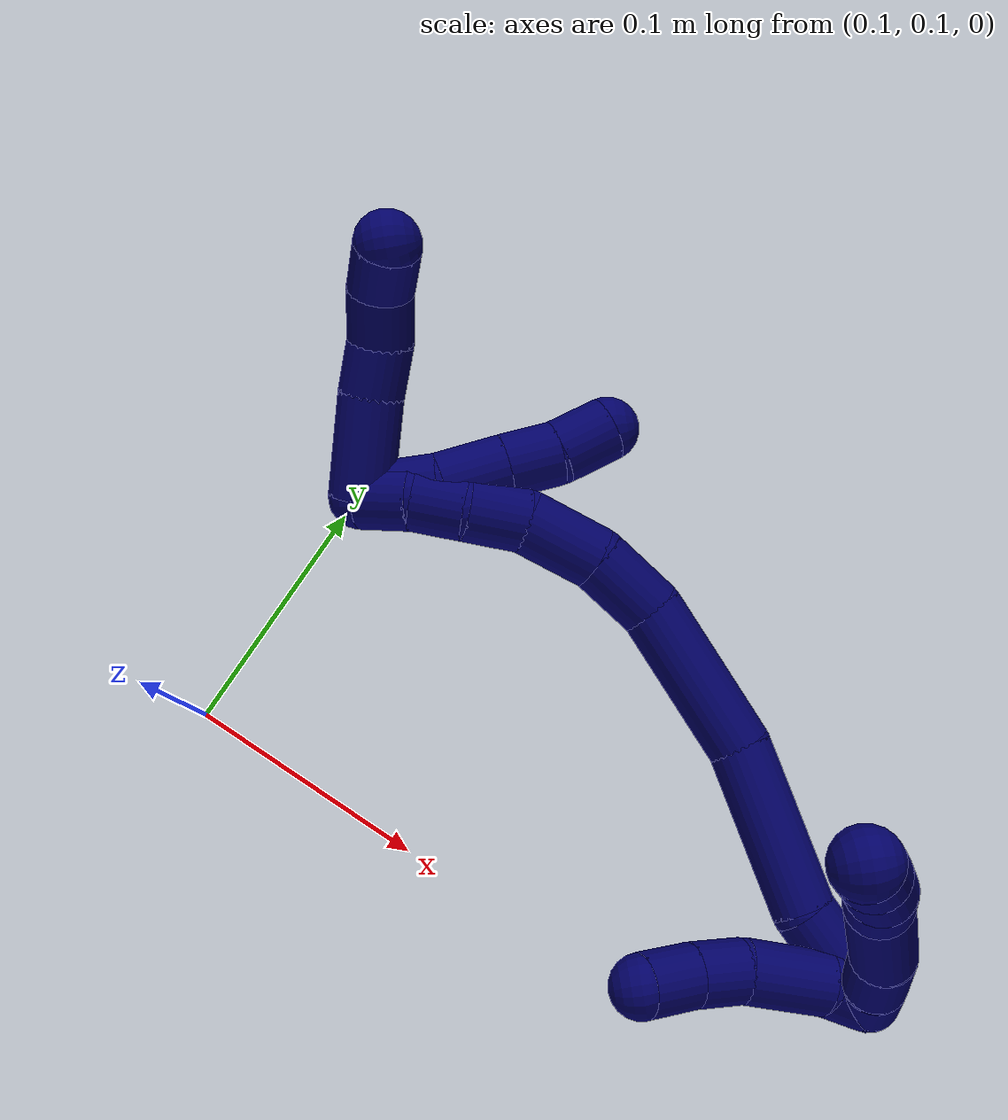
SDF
<sdf version="1.7">
 <world name="default">
  <model name="7">
   <static>0</static>
   <link name="7">
    <collision name="collision-cylinder-e_1_2_8">
     <pose>-0.011282 -0.004541 8.4e-05 1.55231 -1.18809 -1.17099</pose>
     <geometry><cylinder><radius>0.0125</radius><length>0.024324</length></cylinder></geometry>
     <surface>
      <friction><ode><mu>1.16</mu><mu2>1.16</mu2><slip1>0</slip1><slip2>0</slip2></ode></friction>
      <contact><ode><kp>1e+06</kp><kd>1</kd><max_vel>0</max_vel><min_depth>0.001</min_depth></ode></contact>
     </surface>
    </collision>
    <visual name="visual-cylinder-e_1_2_8">
     <pose>-0.011282 -0.004541 8.4e-05 1.55231 -1.18809 -1.17099</pose>
     <geometry><cylinder><radius>0.0125</radius><length>0.024324</length></cylinder></geometry>
     <material><ambient>0.003922 0 0.403922 1</ambient></material>
    </visual>
    <collision name="collision-cylinder-e_2_8_9">
     <pose>-0.035018 -0.012757 0.000713 1.42349 -1.28091 -1.14264</pose>
     <geometry><cylinder><radius>0.0125</radius><length>0.025992</length></cylinder></geometry>
     <surface>
      <friction><ode><mu>1.16</mu><mu2>1.16</mu2><slip1>0</slip1><slip2>0</slip2></ode></friction>
      <contact><ode><kp>1e+06</kp><kd>1</kd><max_vel>0</max_vel><min_depth>0.001</min_depth></ode></contact>
     </surface>
    </collision>
    <visual name="visual-cylinder-e_2_8_9">
     <pose>-0.035018 -0.012757 0.000713 1.42349 -1.28091 -1.14264</pose>
     <geometry><cylinder><radius>0.0125</radius><length>0.025992</length></cylinder></geometry>
     <material><ambient>0.003922 0 0.403922 1</ambient></material>
    </visual>
    <collision name="collision-cylinder-e_3_9_10">
     <pose>-0.066538 -0.020521 -0.000773 2.03174 -1.33573 -1.80943</pose>
     <geometry><cylinder><radius>0.0125</radius><length>0.03921</length></cylinder></geometry>
     <surface>
      <friction><ode><mu>1.16</mu><mu2>1.16</mu2><slip1>0</slip1><slip2>0</slip2></ode></friction>
      <contact><ode><kp>1e+06</kp><kd>1</kd><max_vel>0</max_vel><min_depth>0.001</min_depth></ode></contact>
     </surface>
    </collision>
    <visual name="visual-cylinder-e_3_9_10">
     <pose>-0.066538 -0.020521 -0.000773 2.03174 -1.33573 -1.80943</pose>
     <geometry><cylinder><radius>0.0125</radius><length>0.03921</length></cylinder></geometry>
     <material><ambient>0.003922 0 0.403922 1</ambient></material>
    </visual>
    <collision name="collision-cylinder-e_4_10_11">
     <pose>-0.094585 -0.029163 -0.00375 1.77571 -1.09308 -1.28417</pose>
     <geometry><cylinder><radius>0.0125</radius><length>0.020227</length></cylinder></geometry>
     <surface>
      <friction><ode><mu>1.16</mu><mu2>1.16</mu2><slip1>0</slip1><slip2>0</slip2></ode></friction>
      <contact><ode><kp>1e+06</kp><kd>1</kd><max_vel>0</max_vel><min_depth>0.001</min_depth></ode></contact>
     </surface>
    </collision>
    <visual name="visual-cylinder-e_4_10_11">
     <pose>-0.094585 -0.029163 -0.00375 1.77571 -1.09308 -1.28417</pose>
     <geometry><cylinder><radius>0.0125</radius><length>0.020227</length></cylinder></geometry>
     <material><ambient>0.003922 0 0.403922 1</ambient></material>
    </visual>
    <collision name="collision-cylinder-e_5_11_12">
     <pose>-0.112438 -0.037896 -0.007055 2.08445 -1.07479 -1.59096</pose>
     <geometry><cylinder><radius>0.0125</radius><length>0.020174</length></cylinder></geometry>
     <surface>
      <friction><ode><mu>1.16</mu><mu2>1.16</mu2><slip1>0</slip1><slip2>0</slip2></ode></friction>
      <contact><ode><kp>1e+06</kp><kd>1</kd><max_vel>0</max_vel><min_depth>0.001</min_depth></ode></contact>
     </surface>
    </collision>
    <visual name="visual-cylinder-e_5_11_12">
     <pose>-0.112438 -0.037896 -0.007055 2.08445 -1.07479 -1.59096</pose>
     <geometry><cylinder><radius>0.0125</radius><length>0.020174</length></cylinder></geometry>
     <material><ambient>0.003922 0 0.403922 1</ambient></material>
    </visual>
    <collision name="collision-cylinder-e_6_12_6">
     <pose>-0.129797 -0.046813 -0.011913 2.05651 -1.00801 -1.48185</pose>
     <geometry><cylinder><radius>0.0125</radius><length>0.020073</length></cylinder></geometry>
     <surface>
      <friction><ode><mu>1.16</mu><mu2>1.16</mu2><slip1>0</slip1><slip2>0</slip2></ode></friction>
      <contact><ode><kp>1e+06</kp><kd>1</kd><max_vel>0</max_vel><min_depth>0.001</min_depth></ode></contact>
     </surface>
    </collision>
    <visual name="visual-cylinder-e_6_12_6">
     <pose>-0.129797 -0.046813 -0.011913 2.05651 -1.00801 -1.48185</pose>
     <geometry><cylinder><radius>0.0125</radius><length>0.020073</length></cylinder></geometry>
     <material><ambient>0.003922 0 0.403922 1</ambient></material>
    </visual>
    <collision name="collision-cylinder-e_1_2_13">
     <pose>-0.007999 -0.000553 -0.008461 3.07627 -0.756258 -2.97746</pose>
     <geometry><cylinder><radius>0.0125</radius><length>0.023312</length></cylinder></geometry>
     <surface>
      <friction><ode><mu>1.16</mu><mu2>1.16</mu2><slip1>0</slip1><slip2>0</slip2></ode></friction>
      <contact><ode><kp>1e+06</kp><kd>1</kd><max_vel>0</max_vel><min_depth>0.001</min_depth></ode></contact>
     </surface>
    </collision>
    <visual name="visual-cylinder-e_1_2_13">
     <pose>-0.007999 -0.000553 -0.008461 3.07627 -0.756258 -2.97746</pose>
     <geometry><cylinder><radius>0.0125</radius><length>0.023312</length></cylinder></geometry>
     <material><ambient>0.003922 0 0.403922 1</ambient></material>
    </visual>
    <collision name="collision-cylinder-e_2_13_14">
     <pose>-0.023569 -0.000785 -0.032467 -3.12087 -0.453187 3.05179</pose>
     <geometry><cylinder><radius>0.0125</radius><length>0.03459</length></cylinder></geometry>
     <surface>
      <friction><ode><mu>1.16</mu><mu2>1.16</mu2><slip1>0</slip1><slip2>0</slip2></ode></friction>
      <contact><ode><kp>1e+06</kp><kd>1</kd><max_vel>0</max_vel><min_depth>0.001</min_depth></ode></contact>
     </surface>
    </collision>
    <visual name="visual-cylinder-e_2_13_14">
     <pose>-0.023569 -0.000785 -0.032467 -3.12087 -0.453187 3.05179</pose>
     <geometry><cylinder><radius>0.0125</radius><length>0.03459</length></cylinder></geometry>
     <material><ambient>0.003922 0 0.403922 1</ambient></material>
    </visual>
    <collision name="collision-cylinder-e_3_14_15">
     <pose>-0.034224 -0.002072 -0.057608 2.97546 -0.306779 -2.15361</pose>
     <geometry><cylinder><radius>0.0125</radius><length>0.02041</length></cylinder></geometry>
     <surface>
      <friction><ode><mu>1.16</mu><mu2>1.16</mu2><slip1>0</slip1><slip2>0</slip2></ode></friction>
      <contact><ode><kp>1e+06</kp><kd>1</kd><max_vel>0</max_vel><min_depth>0.001</min_depth></ode></contact>
     </surface>
    </collision>
    <visual name="visual-cylinder-e_3_14_15">
     <pose>-0.034224 -0.002072 -0.057608 2.97546 -0.306779 -2.15361</pose>
     <geometry><cylinder><radius>0.0125</radius><length>0.02041</length></cylinder></geometry>
     <material><ambient>0.003922 0 0.403922 1</ambient></material>
    </visual>
    <collision name="collision-cylinder-e_4_15_5">
     <pose>-0.040899 -0.00704 -0.076866 2.80696 -0.337763 -1.58027</pose>
     <geometry><cylinder><radius>0.0125</radius><length>0.021688</length></cylinder></geometry>
     <surface>
      <friction><ode><mu>1.16</mu><mu2>1.16</mu2><slip1>0</slip1><slip2>0</slip2></ode></friction>
      <contact><ode><kp>1e+06</kp><kd>1</kd><max_vel>0</max_vel><min_depth>0.001</min_depth></ode></contact>
     </surface>
    </collision>
    <visual name="visual-cylinder-e_4_15_5">
     <pose>-0.040899 -0.00704 -0.076866 2.80696 -0.337763 -1.58027</pose>
     <geometry><cylinder><radius>0.0125</radius><length>0.021688</length></cylinder></geometry>
     <material><ambient>0.003922 0 0.403922 1</ambient></material>
    </visual>
    <collision name="collision-cylinder-e_1_2_16">
     <pose>-0.016374 0.011002 -0.009698 -2.29328 -0.840358 1.56016</pose>
     <geometry><cylinder><radius>0.0125</radius><length>0.043964</length></cylinder></geometry>
     <surface>
      <friction><ode><mu>1.16</mu><mu2>1.16</mu2><slip1>0</slip1><slip2>0</slip2></ode></friction>
      <contact><ode><kp>1e+06</kp><kd>1</kd><max_vel>0</max_vel><min_depth>0.001</min_depth></ode></contact>
     </surface>
    </collision>
    <visual name="visual-cylinder-e_1_2_16">
     <pose>-0.016374 0.011002 -0.009698 -2.29328 -0.840358 1.56016</pose>
     <geometry><cylinder><radius>0.0125</radius><length>0.043964</length></cylinder></geometry>
     <material><ambient>0.003922 0 0.403922 1</ambient></material>
    </visual>
    <collision name="collision-cylinder-e_2_16_17">
     <pose>-0.056755 0.044628 -0.02615 -1.86091 -0.793719 1.02476</pose>
     <geometry><cylinder><radius>0.0125</radius><length>0.067343</length></cylinder></geometry>
     <surface>
      <friction><ode><mu>1.16</mu><mu2>1.16</mu2><slip1>0</slip1><slip2>0</slip2></ode></friction>
      <contact><ode><kp>1e+06</kp><kd>1</kd><max_vel>0</max_vel><min_depth>0.001</min_depth></ode></contact>
     </surface>
    </collision>
    <visual name="visual-cylinder-e_2_16_17">
     <pose>-0.056755 0.044628 -0.02615 -1.86091 -0.793719 1.02476</pose>
     <geometry><cylinder><radius>0.0125</radius><length>0.067343</length></cylinder></geometry>
     <material><ambient>0.003922 0 0.403922 1</ambient></material>
    </visual>
    <collision name="collision-cylinder-e_3_17_18">
     <pose>-0.103993 0.085095 -0.045539 -2.18693 -0.815722 1.39192</pose>
     <geometry><cylinder><radius>0.0125</radius><length>0.063803</length></cylinder></geometry>
     <surface>
      <friction><ode><mu>1.16</mu><mu2>1.16</mu2><slip1>0</slip1><slip2>0</slip2></ode></friction>
      <contact><ode><kp>1e+06</kp><kd>1</kd><max_vel>0</max_vel><min_depth>0.001</min_depth></ode></contact>
     </surface>
    </collision>
    <visual name="visual-cylinder-e_3_17_18">
     <pose>-0.103993 0.085095 -0.045539 -2.18693 -0.815722 1.39192</pose>
     <geometry><cylinder><radius>0.0125</radius><length>0.063803</length></cylinder></geometry>
     <material><ambient>0.003922 0 0.403922 1</ambient></material>
    </visual>
    <collision name="collision-cylinder-e_4_18_19">
     <pose>-0.137723 0.107891 -0.06706 -2.63316 -0.801125 2.04085</pose>
     <geometry><cylinder><radius>0.0125</radius><length>0.029239</length></cylinder></geometry>
     <surface>
      <friction><ode><mu>1.16</mu><mu2>1.16</mu2><slip1>0</slip1><slip2>0</slip2></ode></friction>
      <contact><ode><kp>1e+06</kp><kd>1</kd><max_vel>0</max_vel><min_depth>0.001</min_depth></ode></contact>
     </surface>
    </collision>
    <visual name="visual-cylinder-e_4_18_19">
     <pose>-0.137723 0.107891 -0.06706 -2.63316 -0.801125 2.04085</pose>
     <geometry><cylinder><radius>0.0125</radius><length>0.029239</length></cylinder></geometry>
     <material><ambient>0.003922 0 0.403922 1</ambient></material>
    </visual>
    <collision name="collision-cylinder-e_5_19_20">
     <pose>-0.15682 0.116887 -0.088291 -2.82504 -0.584692 2.16636</pose>
     <geometry><cylinder><radius>0.0125</radius><length>0.031152</length></cylinder></geometry>
     <surface>
      <friction><ode><mu>1.16</mu><mu2>1.16</mu2><slip1>0</slip1><slip2>0</slip2></ode></friction>
      <contact><ode><kp>1e+06</kp><kd>1</kd><max_vel>0</max_vel><min_depth>0.001</min_depth></ode></contact>
     </surface>
    </collision>
    <visual name="visual-cylinder-e_5_19_20">
     <pose>-0.15682 0.116887 -0.088291 -2.82504 -0.584692 2.16636</pose>
     <geometry><cylinder><radius>0.0125</radius><length>0.031152</length></cylinder></geometry>
     <material><ambient>0.003922 0 0.403922 1</ambient></material>
    </visual>
    <collision name="collision-cylinder-e_6_20_21">
     <pose>-0.170111 0.121382 -0.111503 -3.10011 -0.40737 2.9414</pose>
     <geometry><cylinder><radius>0.0125</radius><length>0.023695</length></cylinder></geometry>
     <surface>
      <friction><ode><mu>1.16</mu><mu2>1.16</mu2><slip1>0</slip1><slip2>0</slip2></ode></friction>
      <contact><ode><kp>1e+06</kp><kd>1</kd><max_vel>0</max_vel><min_depth>0.001</min_depth></ode></contact>
     </surface>
    </collision>
    <visual name="visual-cylinder-e_6_20_21">
     <pose>-0.170111 0.121382 -0.111503 -3.10011 -0.40737 2.9414</pose>
     <geometry><cylinder><radius>0.0125</radius><length>0.023695</length></cylinder></geometry>
     <material><ambient>0.003922 0 0.403922 1</ambient></material>
    </visual>
    <collision name="collision-cylinder-e_7_21_22">
     <pose>-0.177667 0.123967 -0.131887 -2.921 -0.28549 1.82852</pose>
     <geometry><cylinder><radius>0.0125</radius><length>0.020326</length></cylinder></geometry>
     <surface>
      <friction><ode><mu>1.16</mu><mu2>1.16</mu2><slip1>0</slip1><slip2>0</slip2></ode></friction>
      <contact><ode><kp>1e+06</kp><kd>1</kd><max_vel>0</max_vel><min_depth>0.001</min_depth></ode></contact>
     </surface>
    </collision>
    <visual name="visual-cylinder-e_7_21_22">
     <pose>-0.177667 0.123967 -0.131887 -2.921 -0.28549 1.82852</pose>
     <geometry><cylinder><radius>0.0125</radius><length>0.020326</length></cylinder></geometry>
     <material><ambient>0.003922 0 0.403922 1</ambient></material>
    </visual>
    <collision name="collision-cylinder-e_8_22_1">
     <pose>-0.180989 0.129023 -0.151203 -2.85185 -0.04496 0.305818</pose>
     <geometry><cylinder><radius>0.0125</radius><length>0.020477</length></cylinder></geometry>
     <surface>
      <friction><ode><mu>1.16</mu><mu2>1.16</mu2><slip1>0</slip1><slip2>0</slip2></ode></friction>
      <contact><ode><kp>1e+06</kp><kd>1</kd><max_vel>0</max_vel><min_depth>0.001</min_depth></ode></contact>
     </surface>
    </collision>
    <visual name="visual-cylinder-e_8_22_1">
     <pose>-0.180989 0.129023 -0.151203 -2.85185 -0.04496 0.305818</pose>
     <geometry><cylinder><radius>0.0125</radius><length>0.020477</length></cylinder></geometry>
     <material><ambient>0.003922 0 0.403922 1</ambient></material>
    </visual>
    <collision name="collision-cylinder-e_1_1_23">
     <pose>-0.181532 0.13119 -0.145778 0.049501 -0.005451 -0.000135</pose>
     <geometry><cylinder><radius>0.0125</radius><length>0.030492</length></cylinder></geometry>
     <surface>
      <friction><ode><mu>1.16</mu><mu2>1.16</mu2><slip1>0</slip1><slip2>0</slip2></ode></friction>
      <contact><ode><kp>1e+06</kp><kd>1</kd><max_vel>0</max_vel><min_depth>0.001</min_depth></ode></contact>
     </surface>
    </collision>
    <visual name="visual-cylinder-e_1_1_23">
     <pose>-0.181532 0.13119 -0.145778 0.049501 -0.005451 -0.000135</pose>
     <geometry><cylinder><radius>0.0125</radius><length>0.030492</length></cylinder></geometry>
     <material><ambient>0.003922 0 0.403922 1</ambient></material>
    </visual>
    <collision name="collision-cylinder-e_2_23_24">
     <pose>-0.18156 0.133348 -0.117745 -0.2236 0.004228 -0.000475</pose>
     <geometry><cylinder><radius>0.0125</radius><length>0.026266</length></cylinder></geometry>
     <surface>
      <friction><ode><mu>1.16</mu><mu2>1.16</mu2><slip1>0</slip1><slip2>0</slip2></ode></friction>
      <contact><ode><kp>1e+06</kp><kd>1</kd><max_vel>0</max_vel><min_depth>0.001</min_depth></ode></contact>
     </surface>
    </collision>
    <visual name="visual-cylinder-e_2_23_24">
     <pose>-0.18156 0.133348 -0.117745 -0.2236 0.004228 -0.000475</pose>
     <geometry><cylinder><radius>0.0125</radius><length>0.026266</length></cylinder></geometry>
     <material><ambient>0.003922 0 0.403922 1</ambient></material>
    </visual>
    <collision name="collision-cylinder-e_3_24_25">
     <pose>-0.181295 0.138235 -0.094593 -0.188582 0.019875 -0.00188</pose>
     <geometry><cylinder><radius>0.0125</radius><length>0.021069</length></cylinder></geometry>
     <surface>
      <friction><ode><mu>1.16</mu><mu2>1.16</mu2><slip1>0</slip1><slip2>0</slip2></ode></friction>
      <contact><ode><kp>1e+06</kp><kd>1</kd><max_vel>0</max_vel><min_depth>0.001</min_depth></ode></contact>
     </surface>
    </collision>
    <visual name="visual-cylinder-e_3_24_25">
     <pose>-0.181295 0.138235 -0.094593 -0.188582 0.019875 -0.00188</pose>
     <geometry><cylinder><radius>0.0125</radius><length>0.021069</length></cylinder></geometry>
     <material><ambient>0.003922 0 0.403922 1</ambient></material>
    </visual>
    <collision name="collision-cylinder-e_4_25_4">
     <pose>-0.182303 0.143972 -0.07389 -0.34845 -0.11006 0.019391</pose>
     <geometry><cylinder><radius>0.0125</radius><length>0.022173</length></cylinder></geometry>
     <surface>
      <friction><ode><mu>1.16</mu><mu2>1.16</mu2><slip1>0</slip1><slip2>0</slip2></ode></friction>
      <contact><ode><kp>1e+06</kp><kd>1</kd><max_vel>0</max_vel><min_depth>0.001</min_depth></ode></contact>
     </surface>
    </collision>
    <visual name="visual-cylinder-e_4_25_4">
     <pose>-0.182303 0.143972 -0.07389 -0.34845 -0.11006 0.019391</pose>
     <geometry><cylinder><radius>0.0125</radius><length>0.022173</length></cylinder></geometry>
     <material><ambient>0.003922 0 0.403922 1</ambient></material>
    </visual>
    <collision name="collision-cylinder-e_1_1_26">
     <pose>-0.198851 0.139026 -0.155341 -0.896177 -1.09042 0.567396</pose>
     <geometry><cylinder><radius>0.0125</radius><length>0.039246</length></cylinder></geometry>
     <surface>
      <friction><ode><mu>1.16</mu><mu2>1.16</mu2><slip1>0</slip1><slip2>0</slip2></ode></friction>
      <contact><ode><kp>1e+06</kp><kd>1</kd><max_vel>0</max_vel><min_depth>0.001</min_depth></ode></contact>
     </surface>
    </collision>
    <visual name="visual-cylinder-e_1_1_26">
     <pose>-0.198851 0.139026 -0.155341 -0.896177 -1.09042 0.567396</pose>
     <geometry><cylinder><radius>0.0125</radius><length>0.039246</length></cylinder></geometry>
     <material><ambient>0.003922 0 0.403922 1</ambient></material>
    </visual>
    <collision name="collision-cylinder-e_2_26_27">
     <pose>-0.22535 0.14869 -0.145998 -0.611831 -1.11184 0.387516</pose>
     <geometry><cylinder><radius>0.0125</radius><length>0.020292</length></cylinder></geometry>
     <surface>
      <friction><ode><mu>1.16</mu><mu2>1.16</mu2><slip1>0</slip1><slip2>0</slip2></ode></friction>
      <contact><ode><kp>1e+06</kp><kd>1</kd><max_vel>0</max_vel><min_depth>0.001</min_depth></ode></contact>
     </surface>
    </collision>
    <visual name="visual-cylinder-e_2_26_27">
     <pose>-0.22535 0.14869 -0.145998 -0.611831 -1.11184 0.387516</pose>
     <geometry><cylinder><radius>0.0125</radius><length>0.020292</length></cylinder></geometry>
     <material><ambient>0.003922 0 0.403922 1</ambient></material>
    </visual>
    <collision name="collision-cylinder-e_3_27_28">
     <pose>-0.24446 0.151776 -0.140288 -0.243604 -1.36478 0.19829</pose>
     <geometry><cylinder><radius>0.0125</radius><length>0.020461</length></cylinder></geometry>
     <surface>
      <friction><ode><mu>1.16</mu><mu2>1.16</mu2><slip1>0</slip1><slip2>0</slip2></ode></friction>
      <contact><ode><kp>1e+06</kp><kd>1</kd><max_vel>0</max_vel><min_depth>0.001</min_depth></ode></contact>
     </surface>
    </collision>
    <visual name="visual-cylinder-e_3_27_28">
     <pose>-0.24446 0.151776 -0.140288 -0.243604 -1.36478 0.19829</pose>
     <geometry><cylinder><radius>0.0125</radius><length>0.020461</length></cylinder></geometry>
     <material><ambient>0.003922 0 0.403922 1</ambient></material>
    </visual>
    <collision name="collision-cylinder-e_4_28_3">
     <pose>-0.263637 0.149725 -0.135171 0.691861 -1.15858 -0.463087</pose>
     <geometry><cylinder><radius>0.0125</radius><length>0.020001</length></cylinder></geometry>
     <surface>
      <friction><ode><mu>1.16</mu><mu2>1.16</mu2><slip1>0</slip1><slip2>0</slip2></ode></friction>
      <contact><ode><kp>1e+06</kp><kd>1</kd><max_vel>0</max_vel><min_depth>0.001</min_depth></ode></contact>
     </surface>
    </collision>
    <visual name="visual-cylinder-e_4_28_3">
     <pose>-0.263637 0.149725 -0.135171 0.691861 -1.15858 -0.463087</pose>
     <geometry><cylinder><radius>0.0125</radius><length>0.020001</length></cylinder></geometry>
     <material><ambient>0.003922 0 0.403922 1</ambient></material>
    </visual>
    <collision name="collision-sphere-3">
     <pose>-0.2728 0.147168 -0.132086 0 -0 0</pose>
     <geometry><sphere><radius>0.0125</radius></sphere></geometry>
     <surface>
      <friction><ode><mu>1.16</mu><mu2>1.16</mu2><slip1>0</slip1><slip2>0</slip2></ode></friction>
      <contact><ode><kp>1e+06</kp><kd>1</kd><max_vel>0</max_vel><min_depth>0.001</min_depth></ode></contact>
     </surface>
    </collision>
    <visual name="visual-sphere-3">
     <pose>-0.2728 0.147168 -0.132086 0 -0 0</pose>
     <geometry><sphere><radius>0.0125</radius></sphere></geometry>
     <material><ambient>0.003922 0 0.403922 1</ambient></material>
    </visual>
    <collision name="collision-sphere-28">
     <pose>-0.254474 0.152281 -0.138257 0 -0 0</pose>
     <geometry><sphere><radius>0.0125</radius></sphere></geometry>
     <surface>
      <friction><ode><mu>1.16</mu><mu2>1.16</mu2><slip1>0</slip1><slip2>0</slip2></ode></friction>
      <contact><ode><kp>1e+06</kp><kd>1</kd><max_vel>0</max_vel><min_depth>0.001</min_depth></ode></contact>
     </surface>
    </collision>
    <visual name="visual-sphere-28">
     <pose>-0.254474 0.152281 -0.138257 0 -0 0</pose>
     <geometry><sphere><radius>0.0125</radius></sphere></geometry>
     <material><ambient>0.003922 0 0.403922 1</ambient></material>
    </visual>
    <collision name="collision-sphere-27">
     <pose>-0.234445 0.151271 -0.142319 0 -0 0</pose>
     <geometry><sphere><radius>0.0125</radius></sphere></geometry>
     <surface>
      <friction><ode><mu>1.16</mu><mu2>1.16</mu2><slip1>0</slip1><slip2>0</slip2></ode></friction>
      <contact><ode><kp>1e+06</kp><kd>1</kd><max_vel>0</max_vel><min_depth>0.001</min_depth></ode></contact>
     </surface>
    </collision>
    <visual name="visual-sphere-27">
     <pose>-0.234445 0.151271 -0.142319 0 -0 0</pose>
     <geometry><sphere><radius>0.0125</radius></sphere></geometry>
     <material><ambient>0.003922 0 0.403922 1</ambient></material>
    </visual>
    <collision name="collision-sphere-26">
     <pose>-0.216254 0.146108 -0.149677 0 -0 0</pose>
     <geometry><sphere><radius>0.0125</radius></sphere></geometry>
     <surface>
      <friction><ode><mu>1.16</mu><mu2>1.16</mu2><slip1>0</slip1><slip2>0</slip2></ode></friction>
      <contact><ode><kp>1e+06</kp><kd>1</kd><max_vel>0</max_vel><min_depth>0.001</min_depth></ode></contact>
     </surface>
    </collision>
    <visual name="visual-sphere-26">
     <pose>-0.216254 0.146108 -0.149677 0 -0 0</pose>
     <geometry><sphere><radius>0.0125</radius></sphere></geometry>
     <material><ambient>0.003922 0 0.403922 1</ambient></material>
    </visual>
    <collision name="collision-sphere-4">
     <pose>-0.183521 0.147734 -0.063533 0 -0 0</pose>
     <geometry><sphere><radius>0.0125</radius></sphere></geometry>
     <surface>
      <friction><ode><mu>1.16</mu><mu2>1.16</mu2><slip1>0</slip1><slip2>0</slip2></ode></friction>
      <contact><ode><kp>1e+06</kp><kd>1</kd><max_vel>0</max_vel><min_depth>0.001</min_depth></ode></contact>
     </surface>
    </collision>
    <visual name="visual-sphere-4">
     <pose>-0.183521 0.147734 -0.063533 0 -0 0</pose>
     <geometry><sphere><radius>0.0125</radius></sphere></geometry>
     <material><ambient>0.003922 0 0.403922 1</ambient></material>
    </visual>
    <collision name="collision-sphere-25">
     <pose>-0.181086 0.140209 -0.084247 0 -0 0</pose>
     <geometry><sphere><radius>0.0125</radius></sphere></geometry>
     <surface>
      <friction><ode><mu>1.16</mu><mu2>1.16</mu2><slip1>0</slip1><slip2>0</slip2></ode></friction>
      <contact><ode><kp>1e+06</kp><kd>1</kd><max_vel>0</max_vel><min_depth>0.001</min_depth></ode></contact>
     </surface>
    </collision>
    <visual name="visual-sphere-25">
     <pose>-0.181086 0.140209 -0.084247 0 -0 0</pose>
     <geometry><sphere><radius>0.0125</radius></sphere></geometry>
     <material><ambient>0.003922 0 0.403922 1</ambient></material>
    </visual>
    <collision name="collision-sphere-24">
     <pose>-0.181504 0.13626 -0.104939 0 -0 0</pose>
     <geometry><sphere><radius>0.0125</radius></sphere></geometry>
     <surface>
      <friction><ode><mu>1.16</mu><mu2>1.16</mu2><slip1>0</slip1><slip2>0</slip2></ode></friction>
      <contact><ode><kp>1e+06</kp><kd>1</kd><max_vel>0</max_vel><min_depth>0.001</min_depth></ode></contact>
     </surface>
    </collision>
    <visual name="visual-sphere-24">
     <pose>-0.181504 0.13626 -0.104939 0 -0 0</pose>
     <geometry><sphere><radius>0.0125</radius></sphere></geometry>
     <material><ambient>0.003922 0 0.403922 1</ambient></material>
    </visual>
    <collision name="collision-sphere-23">
     <pose>-0.181616 0.130436 -0.130551 0 -0 0</pose>
     <geometry><sphere><radius>0.0125</radius></sphere></geometry>
     <surface>
      <friction><ode><mu>1.16</mu><mu2>1.16</mu2><slip1>0</slip1><slip2>0</slip2></ode></friction>
      <contact><ode><kp>1e+06</kp><kd>1</kd><max_vel>0</max_vel><min_depth>0.001</min_depth></ode></contact>
     </surface>
    </collision>
    <visual name="visual-sphere-23">
     <pose>-0.181616 0.130436 -0.130551 0 -0 0</pose>
     <geometry><sphere><radius>0.0125</radius></sphere></geometry>
     <material><ambient>0.003922 0 0.403922 1</ambient></material>
    </visual>
    <collision name="collision-sphere-1">
     <pose>-0.181449 0.131945 -0.161005 0 -0 0</pose>
     <geometry><sphere><radius>0.0125</radius></sphere></geometry>
     <surface>
      <friction><ode><mu>1.16</mu><mu2>1.16</mu2><slip1>0</slip1><slip2>0</slip2></ode></friction>
      <contact><ode><kp>1e+06</kp><kd>1</kd><max_vel>0</max_vel><min_depth>0.001</min_depth></ode></contact>
     </surface>
    </collision>
    <visual name="visual-sphere-1">
     <pose>-0.181449 0.131945 -0.161005 0 -0 0</pose>
     <geometry><sphere><radius>0.0125</radius></sphere></geometry>
     <material><ambient>0.003922 0 0.403922 1</ambient></material>
    </visual>
    <collision name="collision-sphere-22">
     <pose>-0.180529 0.1261 -0.141402 0 -0 0</pose>
     <geometry><sphere><radius>0.0125</radius></sphere></geometry>
     <surface>
      <friction><ode><mu>1.16</mu><mu2>1.16</mu2><slip1>0</slip1><slip2>0</slip2></ode></friction>
      <contact><ode><kp>1e+06</kp><kd>1</kd><max_vel>0</max_vel><min_depth>0.001</min_depth></ode></contact>
     </surface>
    </collision>
    <visual name="visual-sphere-22">
     <pose>-0.180529 0.1261 -0.141402 0 -0 0</pose>
     <geometry><sphere><radius>0.0125</radius></sphere></geometry>
     <material><ambient>0.003922 0 0.403922 1</ambient></material>
    </visual>
    <collision name="collision-sphere-21">
     <pose>-0.174805 0.121833 -0.122371 0 -0 0</pose>
     <geometry><sphere><radius>0.0125</radius></sphere></geometry>
     <surface>
      <friction><ode><mu>1.16</mu><mu2>1.16</mu2><slip1>0</slip1><slip2>0</slip2></ode></friction>
      <contact><ode><kp>1e+06</kp><kd>1</kd><max_vel>0</max_vel><min_depth>0.001</min_depth></ode></contact>
     </surface>
    </collision>
    <visual name="visual-sphere-21">
     <pose>-0.174805 0.121833 -0.122371 0 -0 0</pose>
     <geometry><sphere><radius>0.0125</radius></sphere></geometry>
     <material><ambient>0.003922 0 0.403922 1</ambient></material>
    </visual>
    <collision name="collision-sphere-12">
     <pose>-0.121309 -0.042077 -0.009413 0 -0 0</pose>
     <geometry><sphere><radius>0.0125</radius></sphere></geometry>
     <surface>
      <friction><ode><mu>1.16</mu><mu2>1.16</mu2><slip1>0</slip1><slip2>0</slip2></ode></friction>
      <contact><ode><kp>1e+06</kp><kd>1</kd><max_vel>0</max_vel><min_depth>0.001</min_depth></ode></contact>
     </surface>
    </collision>
    <visual name="visual-sphere-12">
     <pose>-0.121309 -0.042077 -0.009413 0 -0 0</pose>
     <geometry><sphere><radius>0.0125</radius></sphere></geometry>
     <material><ambient>0.003922 0 0.403922 1</ambient></material>
    </visual>
    <collision name="collision-sphere-11">
     <pose>-0.103566 -0.033715 -0.004696 0 -0 0</pose>
     <geometry><sphere><radius>0.0125</radius></sphere></geometry>
     <surface>
      <friction><ode><mu>1.16</mu><mu2>1.16</mu2><slip1>0</slip1><slip2>0</slip2></ode></friction>
      <contact><ode><kp>1e+06</kp><kd>1</kd><max_vel>0</max_vel><min_depth>0.001</min_depth></ode></contact>
     </surface>
    </collision>
    <visual name="visual-sphere-11">
     <pose>-0.103566 -0.033715 -0.004696 0 -0 0</pose>
     <geometry><sphere><radius>0.0125</radius></sphere></geometry>
     <material><ambient>0.003922 0 0.403922 1</ambient></material>
    </visual>
    <collision name="collision-sphere-10">
     <pose>-0.085604 -0.02461 -0.002804 0 -0 0</pose>
     <geometry><sphere><radius>0.0125</radius></sphere></geometry>
     <surface>
      <friction><ode><mu>1.16</mu><mu2>1.16</mu2><slip1>0</slip1><slip2>0</slip2></ode></friction>
      <contact><ode><kp>1e+06</kp><kd>1</kd><max_vel>0</max_vel><min_depth>0.001</min_depth></ode></contact>
     </surface>
    </collision>
    <visual name="visual-sphere-10">
     <pose>-0.085604 -0.02461 -0.002804 0 -0 0</pose>
     <geometry><sphere><radius>0.0125</radius></sphere></geometry>
     <material><ambient>0.003922 0 0.403922 1</ambient></material>
    </visual>
    <collision name="collision-sphere-9">
     <pose>-0.047472 -0.016431 0.001258 0 -0 0</pose>
     <geometry><sphere><radius>0.0125</radius></sphere></geometry>
     <surface>
      <friction><ode><mu>1.16</mu><mu2>1.16</mu2><slip1>0</slip1><slip2>0</slip2></ode></friction>
      <contact><ode><kp>1e+06</kp><kd>1</kd><max_vel>0</max_vel><min_depth>0.001</min_depth></ode></contact>
     </surface>
    </collision>
    <visual name="visual-sphere-9">
     <pose>-0.047472 -0.016431 0.001258 0 -0 0</pose>
     <geometry><sphere><radius>0.0125</radius></sphere></geometry>
     <material><ambient>0.003922 0 0.403922 1</ambient></material>
    </visual>
    <collision name="collision-sphere-2">
     <geometry><sphere><radius>0.0125</radius></sphere></geometry>
     <surface>
      <friction><ode><mu>1.16</mu><mu2>1.16</mu2><slip1>0</slip1><slip2>0</slip2></ode></friction>
      <contact><ode><kp>1e+06</kp><kd>1</kd><max_vel>0</max_vel><min_depth>0.001</min_depth></ode></contact>
     </surface>
    </collision>
    <visual name="visual-sphere-2">
     <geometry><sphere><radius>0.0125</radius></sphere></geometry>
     <material><ambient>0.003922 0 0.403922 1</ambient></material>
    </visual>
    <collision name="collision-sphere-19">
     <pose>-0.148223 0.112844 -0.075947 0 -0 0</pose>
     <geometry><sphere><radius>0.0125</radius></sphere></geometry>
     <surface>
      <friction><ode><mu>1.16</mu><mu2>1.16</mu2><slip1>0</slip1><slip2>0</slip2></ode></friction>
      <contact><ode><kp>1e+06</kp><kd>1</kd><max_vel>0</max_vel><min_depth>0.001</min_depth></ode></contact>
     </surface>
    </collision>
    <visual name="visual-sphere-19">
     <pose>-0.148223 0.112844 -0.075947 0 -0 0</pose>
     <geometry><sphere><radius>0.0125</radius></sphere></geometry>
     <material><ambient>0.003922 0 0.403922 1</ambient></material>
    </visual>
    <collision name="collision-sphere-8">
     <pose>-0.022565 -0.009082 0.000168 0 -0 0</pose>
     <geometry><sphere><radius>0.0125</radius></sphere></geometry>
     <surface>
      <friction><ode><mu>1.16</mu><mu2>1.16</mu2><slip1>0</slip1><slip2>0</slip2></ode></friction>
      <contact><ode><kp>1e+06</kp><kd>1</kd><max_vel>0</max_vel><min_depth>0.001</min_depth></ode></contact>
     </surface>
    </collision>
    <visual name="visual-sphere-8">
     <pose>-0.022565 -0.009082 0.000168 0 -0 0</pose>
     <geometry><sphere><radius>0.0125</radius></sphere></geometry>
     <material><ambient>0.003922 0 0.403922 1</ambient></material>
    </visual>
    <collision name="collision-sphere-6">
     <pose>-0.138286 -0.051548 -0.014413 0 -0 0</pose>
     <geometry><sphere><radius>0.0125</radius></sphere></geometry>
     <surface>
      <friction><ode><mu>1.16</mu><mu2>1.16</mu2><slip1>0</slip1><slip2>0</slip2></ode></friction>
      <contact><ode><kp>1e+06</kp><kd>1</kd><max_vel>0</max_vel><min_depth>0.001</min_depth></ode></contact>
     </surface>
    </collision>
    <visual name="visual-sphere-6">
     <pose>-0.138286 -0.051548 -0.014413 0 -0 0</pose>
     <geometry><sphere><radius>0.0125</radius></sphere></geometry>
     <material><ambient>0.003922 0 0.403922 1</ambient></material>
    </visual>
    <collision name="collision-sphere-13">
     <pose>-0.015997 -0.001107 -0.016921 0 -0 0</pose>
     <geometry><sphere><radius>0.0125</radius></sphere></geometry>
     <surface>
      <friction><ode><mu>1.16</mu><mu2>1.16</mu2><slip1>0</slip1><slip2>0</slip2></ode></friction>
      <contact><ode><kp>1e+06</kp><kd>1</kd><max_vel>0</max_vel><min_depth>0.001</min_depth></ode></contact>
     </surface>
    </collision>
    <visual name="visual-sphere-13">
     <pose>-0.015997 -0.001107 -0.016921 0 -0 0</pose>
     <geometry><sphere><radius>0.0125</radius></sphere></geometry>
     <material><ambient>0.003922 0 0.403922 1</ambient></material>
    </visual>
    <collision name="collision-sphere-14">
     <pose>-0.031142 -0.000463 -0.048013 0 -0 0</pose>
     <geometry><sphere><radius>0.0125</radius></sphere></geometry>
     <surface>
      <friction><ode><mu>1.16</mu><mu2>1.16</mu2><slip1>0</slip1><slip2>0</slip2></ode></friction>
      <contact><ode><kp>1e+06</kp><kd>1</kd><max_vel>0</max_vel><min_depth>0.001</min_depth></ode></contact>
     </surface>
    </collision>
    <visual name="visual-sphere-14">
     <pose>-0.031142 -0.000463 -0.048013 0 -0 0</pose>
     <geometry><sphere><radius>0.0125</radius></sphere></geometry>
     <material><ambient>0.003922 0 0.403922 1</ambient></material>
    </visual>
    <collision name="collision-sphere-15">
     <pose>-0.037305 -0.00368 -0.067202 0 -0 0</pose>
     <geometry><sphere><radius>0.0125</radius></sphere></geometry>
     <surface>
      <friction><ode><mu>1.16</mu><mu2>1.16</mu2><slip1>0</slip1><slip2>0</slip2></ode></friction>
      <contact><ode><kp>1e+06</kp><kd>1</kd><max_vel>0</max_vel><min_depth>0.001</min_depth></ode></contact>
     </surface>
    </collision>
    <visual name="visual-sphere-15">
     <pose>-0.037305 -0.00368 -0.067202 0 -0 0</pose>
     <geometry><sphere><radius>0.0125</radius></sphere></geometry>
     <material><ambient>0.003922 0 0.403922 1</ambient></material>
    </visual>
    <collision name="collision-sphere-5">
     <pose>-0.044492 -0.010401 -0.08653 0 -0 0</pose>
     <geometry><sphere><radius>0.0125</radius></sphere></geometry>
     <surface>
      <friction><ode><mu>1.16</mu><mu2>1.16</mu2><slip1>0</slip1><slip2>0</slip2></ode></friction>
      <contact><ode><kp>1e+06</kp><kd>1</kd><max_vel>0</max_vel><min_depth>0.001</min_depth></ode></contact>
     </surface>
    </collision>
    <visual name="visual-sphere-5">
     <pose>-0.044492 -0.010401 -0.08653 0 -0 0</pose>
     <geometry><sphere><radius>0.0125</radius></sphere></geometry>
     <material><ambient>0.003922 0 0.403922 1</ambient></material>
    </visual>
    <collision name="collision-sphere-16">
     <pose>-0.032748 0.022004 -0.019396 0 -0 0</pose>
     <geometry><sphere><radius>0.0125</radius></sphere></geometry>
     <surface>
      <friction><ode><mu>1.16</mu><mu2>1.16</mu2><slip1>0</slip1><slip2>0</slip2></ode></friction>
      <contact><ode><kp>1e+06</kp><kd>1</kd><max_vel>0</max_vel><min_depth>0.001</min_depth></ode></contact>
     </surface>
    </collision>
    <visual name="visual-sphere-16">
     <pose>-0.032748 0.022004 -0.019396 0 -0 0</pose>
     <geometry><sphere><radius>0.0125</radius></sphere></geometry>
     <material><ambient>0.003922 0 0.403922 1</ambient></material>
    </visual>
    <collision name="collision-sphere-17">
     <pose>-0.080762 0.067252 -0.032904 0 -0 0</pose>
     <geometry><sphere><radius>0.0125</radius></sphere></geometry>
     <surface>
      <friction><ode><mu>1.16</mu><mu2>1.16</mu2><slip1>0</slip1><slip2>0</slip2></ode></friction>
      <contact><ode><kp>1e+06</kp><kd>1</kd><max_vel>0</max_vel><min_depth>0.001</min_depth></ode></contact>
     </surface>
    </collision>
    <visual name="visual-sphere-17">
     <pose>-0.080762 0.067252 -0.032904 0 -0 0</pose>
     <geometry><sphere><radius>0.0125</radius></sphere></geometry>
     <material><ambient>0.003922 0 0.403922 1</ambient></material>
    </visual>
    <collision name="collision-sphere-18">
     <pose>-0.127224 0.102939 -0.058174 0 -0 0</pose>
     <geometry><sphere><radius>0.0125</radius></sphere></geometry>
     <surface>
      <friction><ode><mu>1.16</mu><mu2>1.16</mu2><slip1>0</slip1><slip2>0</slip2></ode></friction>
      <contact><ode><kp>1e+06</kp><kd>1</kd><max_vel>0</max_vel><min_depth>0.001</min_depth></ode></contact>
     </surface>
    </collision>
    <visual name="visual-sphere-18">
     <pose>-0.127224 0.102939 -0.058174 0 -0 0</pose>
     <geometry><sphere><radius>0.0125</radius></sphere></geometry>
     <material><ambient>0.003922 0 0.403922 1</ambient></material>
    </visual>
    <collision name="collision-sphere-20">
     <pose>-0.165417 0.120931 -0.100634 0 -0 0</pose>
     <geometry><sphere><radius>0.0125</radius></sphere></geometry>
     <surface>
      <friction><ode><mu>1.16</mu><mu2>1.16</mu2><slip1>0</slip1><slip2>0</slip2></ode></friction>
      <contact><ode><kp>1e+06</kp><kd>1</kd><max_vel>0</max_vel><min_depth>0.001</min_depth></ode></contact>
     </surface>
    </collision>
    <visual name="visual-sphere-20">
     <pose>-0.165417 0.120931 -0.100634 0 -0 0</pose>
     <geometry><sphere><radius>0.0125</radius></sphere></geometry>
     <material><ambient>0.003922 0 0.403922 1</ambient></material>
    </visual>
    <inertial>
     <pose>-0.113897 0.06421 -0.064874 0 -0 0</pose>
     <mass>0.75</mass>
     <inertia><ixx>2.1e-05</ixx><ixy>0</ixy><ixz>0</ixz><iyy>0.000123</iyy><iyz>0</iyz><izz>3.1e-05</izz></inertia>
    </inertial>
   </link>
   <pose>0.382591 0.151502 0.011418 -1.52668 0.83986 -0.792056</pose>
  </model>
 </world>
</sdf>
